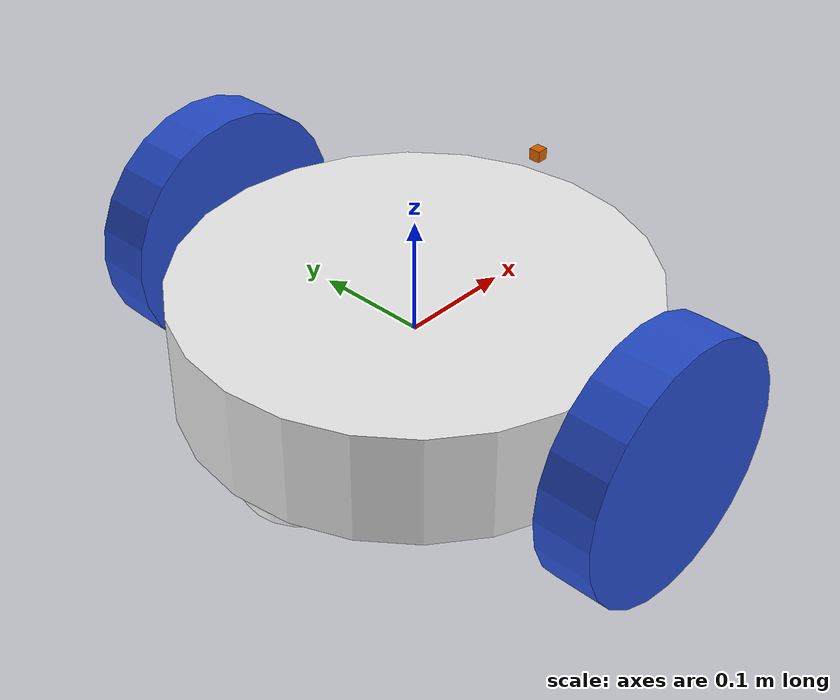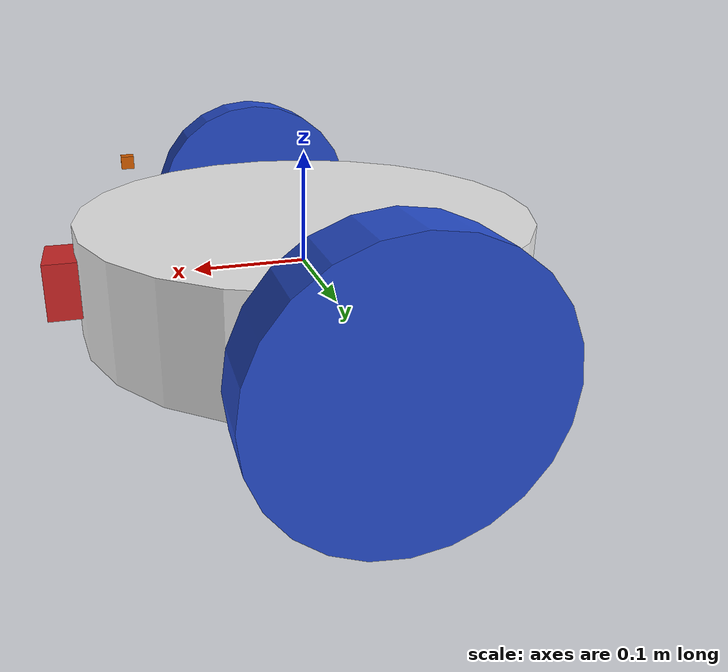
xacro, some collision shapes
<robot name="my_robot" xmlns:xacro="http://www.ros.org/wiki/xacro">

  <xacro:include filename="$(find my_robot)/urdf/my_robot.gazebo" />

  <link name="robot_footprint"></link>

  <gazebo reference="left_wheel">
    <material>Gazebo/Blue</material>
  </gazebo>

  <gazebo reference="right_wheel">
    <material>Gazebo/Blue</material>
  </gazebo>

  <gazebo reference="chassis">
    <material>Gazebo/White</material>
  </gazebo>

  <gazebo reference="camera">
    <material>Gazebo/Red</material>
  </gazebo>

  <!-- Chassis Wheel properties -->

  <joint name="robot_footprint_joint" type="fixed">
    <origin xyz="0 0 0" rpy="0 0 0" />
    <parent link="robot_footprint"/>
    <child link="chassis" />
  </joint>

  <link name='chassis'>
    <pose>0 0 0.1 0 0 0</pose>

    <inertial>
      <mass value="15.0"/>
      <origin xyz="0.0 0 0" rpy=" 0 0 0"/>
      <inertia
          ixx="0.1" ixy="0" ixz="0"
          iyy="0.1" iyz="0"
          izz="0.1"
      />
    </inertial>

    <collision name='collision'>
      <origin xyz="0 0 0" rpy=" 0 0 0"/>
      <geometry>
        <cylinder radius="0.2" length=".1"/>
      </geometry>
    </collision>

    <visual name='chassis_visual'>
      <origin xyz="0 0 0" rpy=" 0 0 0"/>
      <geometry>
        <cylinder radius="0.2" length=".1"/>
      </geometry>
    </visual>

    <collision name='back_caster_collision'>
      <origin xyz="-0.13 0 -0.05" rpy=" 0 0 0"/>
      <geometry>
        <sphere radius="0.0599"/>
      </geometry>
    </collision>

    <visual name='back_caster_visual'>
      <origin xyz="-0.13 0 -0.05" rpy=" 0 0 0"/>
      <geometry>
        <sphere radius="0.06"/>
      </geometry>
    </visual>

    <collision name='front_caster_collision'>
      <origin xyz="0.13 0 -0.05" rpy=" 0 0 0"/>
      <geometry>
        <sphere radius="0.0599"/>
      </geometry>
    </collision>

    <visual name='front_caster_visual'>
      <origin xyz="0.13 0 -0.05" rpy=" 0 0 0"/>
      <geometry>
        <sphere radius="0.06"/>
      </geometry>
    </visual>

  </link>

  <!-- Left Wheel properties -->

  <joint type="continuous" name="left_wheel_hinge">
    <origin xyz="0 0.24 0" rpy="0 0 0"/>
    <child link="left_wheel"/>
    <parent link="chassis"/>
    <axis xyz="0 1 0" rpy="0 0 0"/>
    <limit effort="10000" velocity="1000"/>
    <dynamics damping="1.0" friction="1.0"/>
  </joint>

  <link name='left_wheel'>

    <inertial>
      <mass value="5.0"/>
      <origin xyz="0 0 0" rpy=" 0 1.5707 1.5707"/>
      <inertia
          ixx="0.1" ixy="0" ixz="0"
          iyy="0.1" iyz="0"
          izz="0.1"
      />
    </inertial>

    <collision name='collision'>
      <origin xyz="0 0 0" rpy=" 0 1.5707 1.5707"/>
      <geometry>
        <cylinder radius="0.11" length="0.05"/>
      </geometry>
    </collision>

    <visual name='left_wheel_visual'>
      <origin xyz="0 0 0" rpy=" 0 1.5707 1.5707"/>
      <geometry>
        <cylinder radius="0.11" length="0.05"/>
      </geometry>
    </visual>
  </link>

  <!-- Right Wheel properties -->

  <joint type="continuous" name="right_wheel_hinge">
    <origin xyz="0 -0.24 0" rpy="0 0 0"/>
    <child link="right_wheel"/>
    <parent link="chassis"/>
    <axis xyz="0 1 0" rpy="0 0 0"/>
    <limit effort="10000" velocity="1000"/>
    <dynamics damping="1.0" friction="1.0"/>
  </joint>

  <link name='right_wheel'>

    <inertial>
      <mass value="5.0"/>
      <origin xyz="0 0 0" rpy=" 0 1.5707 1.5707"/>
      <inertia
          ixx="0.1" ixy="0" ixz="0"
          iyy="0.1" iyz="0"
          izz="0.1"
      />
    </inertial>

    <collision name='collision'>
      <origin xyz="0 0 0" rpy=" 0 1.5707 1.5707"/>
      <geometry>
        <cylinder radius="0.11" length="0.05"/>
      </geometry>
    </collision>

    <visual name='right_wheel_visual'>
      <origin xyz="0 0 0" rpy=" 0 1.5707 1.5707"/>
      <geometry>
        <cylinder radius="0.11" length="0.05"/>
      </geometry>
    </visual>
  </link>

  <!-- Camera properties -->

  <joint type="fixed" name="camera_joint">
    <origin xyz="0.2 0 0" rpy="0 0 0"/>
    <child link="camera"/>
    <parent link="chassis"/>
    <axis xyz="0 1 0" rpy="0 0 0"/>
  </joint>

  <link name='camera'>

    <inertial>
      <mass value="0.1"/>
      <origin xyz="0 0 0" rpy=" 0 0 0"/>
      <inertia
          ixx=".000001" ixy="0" ixz="0"
          iyy=".000001" iyz="0"
          izz=".000001"
      />
    </inertial>

    <collision name='collision'>
      <origin xyz="0 0 0" rpy=" 0 0 0"/>
      <geometry>
        <box size=".05 .05 .05"/>
      </geometry>
    </collision>

    <visual name='camera_visual'>
      <origin xyz="0 0 0" rpy=" 0 0 0"/>
      <geometry>
        <box size=".05 .05 .05"/>
      </geometry>
    </visual>
  </link>

  <!-- LIDAR properties -->

  <joint type="fixed" name="hokuyo_joint">
    <origin xyz="0.15 0 0.1" rpy="0 0 0"/>
    <child link="hokuyo"/>
    <parent link="chassis"/>
    <axis xyz="0 1 0" rpy="0 0 0"/>
  </joint>

  <link name='hokuyo'>

    <inertial>
      <mass value="0.00001"/>
      <origin xyz="0 0 0" rpy=" 0 0 0"/>
      <inertia
          ixx=".000001" ixy="0" ixz="0"
          iyy=".000001" iyz="0"
          izz=".000001"
      />
    </inertial>

    <collision name='collision'>
      <origin xyz="0 0 0" rpy=" 0 0 0"/>
      <geometry>
        <box size=".01 .01 .01"/>
      </geometry>
    </collision>

    <visual name='lidar_visual'>
      <origin xyz="0 0 0" rpy=" 0 0 0"/>
      <geometry>
        <mesh filename="package://my_robot/meshes/hokuyo.dae"/>
      </geometry>
    </visual>
  </link>

  <!-- RGBD properties -->

  <link name="camera_link_optical">
  </link>

  <joint name="camera_optical_joint" type="fixed">
    <origin xyz="0 0 0" rpy="-1.5707 0 -1.5707"/>
    <parent link="camera"/>
    <child link="camera_link_optical"/>
  </joint>

</robot>
